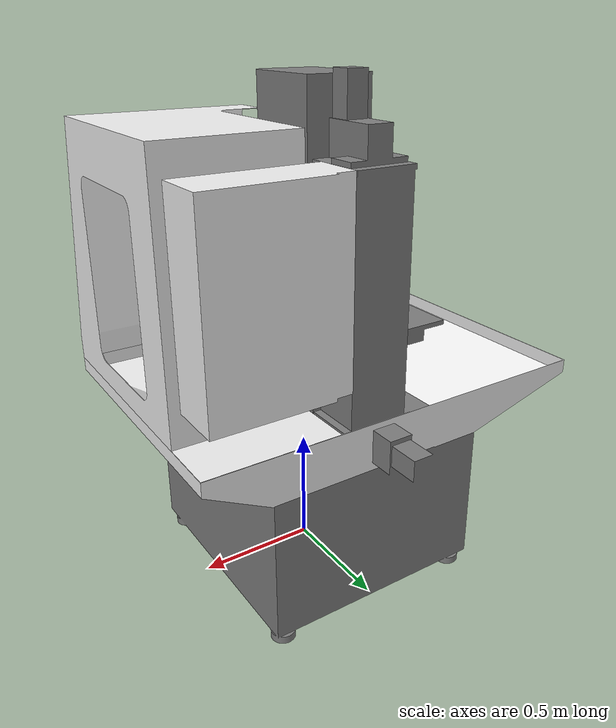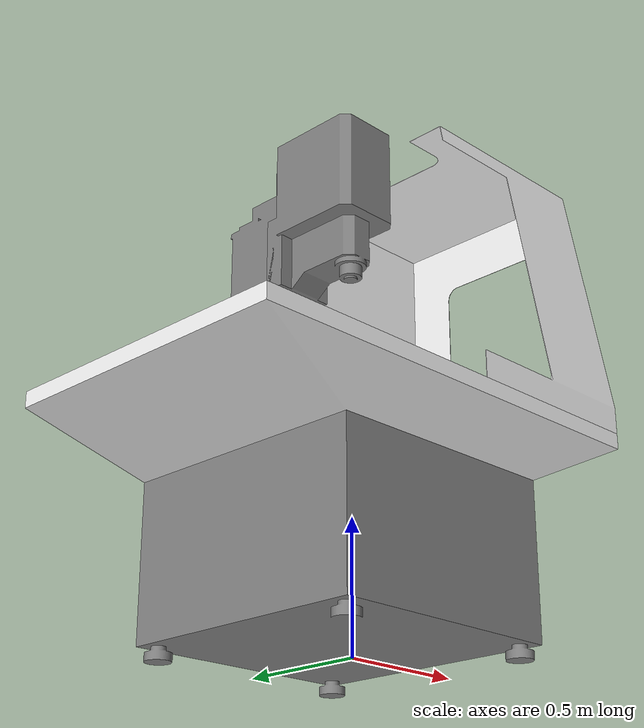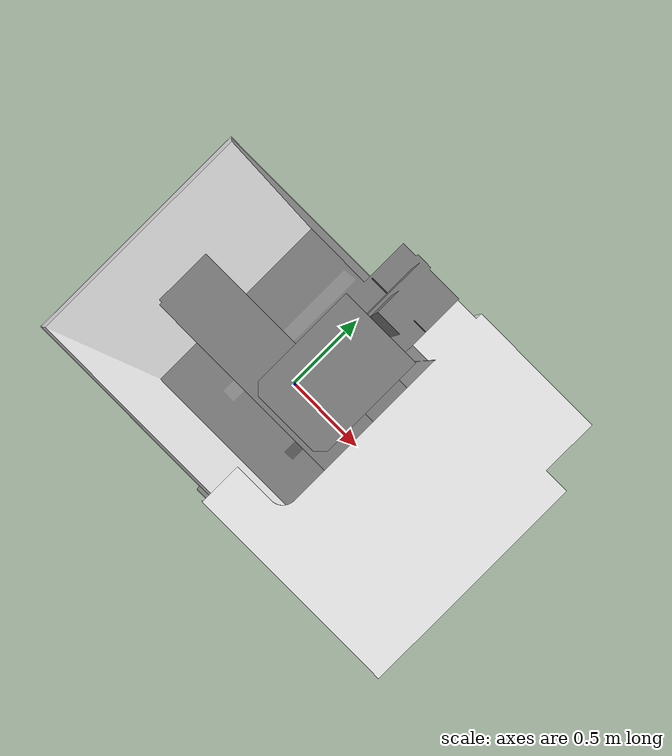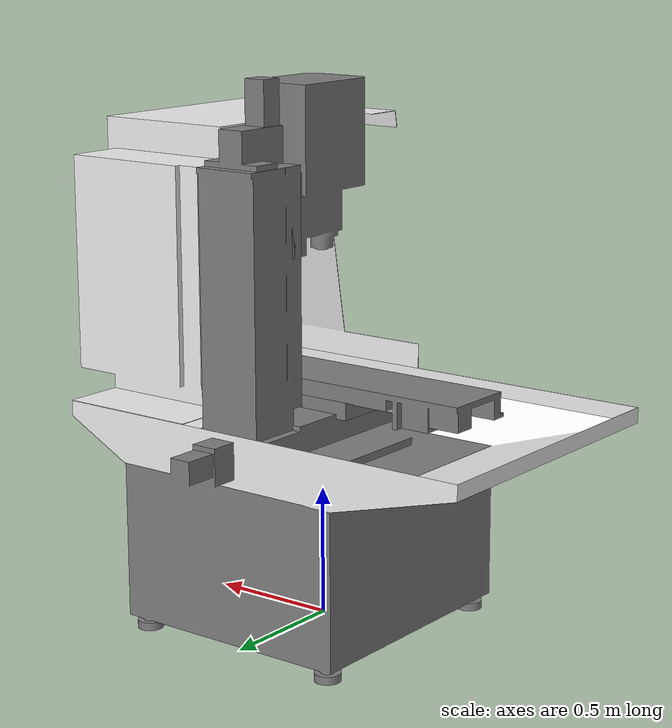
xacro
<?xml version="1.0" ?>
<robot name="tormach_pcnc_1100" xmlns:xacro="http://www.ros.org/wiki/xacro">
  <xacro:arg name="prefix" default=""/>
  <xacro:include filename="$(find tormach_pcnc_1100_support)/urdf/tormach_pcnc_1100_macro.xacro"/>
  <xacro:include filename="$(find tormach_pcnc_1100_support)/urdf/tormach_pcnc_1100_additionals.xacro"/>
  <xacro:tormach_pcnc_1100_macro prefix="$(arg prefix)"/>
  <xacro:tormach_pcnc_1100_sump prefix="$(arg prefix)"/>
  <xacro:tormach_pcnc_1100_cover_right prefix="$(arg prefix)"/>

  <!-- 'world' frame: default pose reference frame -->
  <link name="world" />
  <joint name="world-$(arg prefix)frame" type="fixed">
    <origin xyz="0 0 0" rpy="0 0 0"/>
    <axis xyz="0 0 1"/>
    <parent link="world"/>
    <child link="$(arg prefix)frame"/>
  </joint>
</robot>

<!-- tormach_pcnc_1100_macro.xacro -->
<robot xmlns:xacro="http://www.ros.org/wiki/xacro">
  <xacro:macro name="tormach_pcnc_1100_macro" params="prefix">
    <material name="${prefix}DarkGray">
      <color rgba="0.5 0.5 0.5 1.0"/>
    </material>

    <!-- link list -->
    <link name="${prefix}frame">
      <visual>
        <geometry>
          <mesh filename="package://tormach_pcnc_1100_support/meshes/frame.stl"/>
        </geometry>
        <origin rpy="0.0 0 0.0" xyz="0 0 0"/>
        <material name="${prefix}DarkGray"/>
      </visual>
    </link>
    <link name="${prefix}y_axis">
      <visual>
        <geometry>
          <mesh filename="package://tormach_pcnc_1100_support/meshes/y_slide.stl"/>
        </geometry>
        <origin rpy="0.0 0 0.0" xyz="0 0 0"/>
        <material name="${prefix}DarkGray"/>
      </visual>
      <collision>
        <geometry>
          <mesh filename="package://tormach_pcnc_1100_support/meshes/y_slide.stl"/>
        </geometry>
        <origin rpy="0.0 0 0.0" xyz="0 0 0"/>
      </collision>
      <inertial>
        <mass value="100"/>
        <inertia ixx="1.0" ixy="0.0" ixz="0.0" iyy="1.0" iyz="0.0" izz="1.0"/>
      </inertial>
    </link>

    <link name="${prefix}x_axis">
      <visual>
        <geometry>
          <mesh filename="package://tormach_pcnc_1100_support/meshes/x_slide.stl"/>
        </geometry>
        <origin rpy="0.0 0 0.0" xyz="0 0 0"/>
        <material name="${prefix}DarkGray"/>
      </visual>
      <collision>
        <geometry>
          <mesh filename="package://tormach_pcnc_1100_support/meshes/x_slide.stl"/>
        </geometry>
        <origin rpy="0.0 0 0.0" xyz="0 0 0"/>
      </collision>
      <inertial>
        <mass value="100"/>
        <inertia ixx="1.0" ixy="0.0" ixz="0.0" iyy="1.0" iyz="0.0" izz="1.0"/>
      </inertial>
    </link>

    <link name="${prefix}z_axis">
      <visual>
        <geometry>
          <mesh filename="package://tormach_pcnc_1100_support/meshes/z_slide.stl"/>
        </geometry>
        <origin rpy="0.0 0 0.0" xyz="0 0 0"/>
        <material name="${prefix}DarkGray"/>
      </visual>
      <collision>
        <geometry>
          <mesh filename="package://tormach_pcnc_1100_support/meshes/z_slide.stl"/>
        </geometry>
        <origin rpy="0.0 0 0.0" xyz="-0 0 0"/>
      </collision>
      <inertial>
        <mass value="100"/>
        <inertia ixx="1.0" ixy="0.0" ixz="0.0" iyy="1.0" iyz="0.0" izz="1.0"/>
      </inertial>
    </link>

    <!-- joint list -->
    <joint name="${prefix}y_joint" type="prismatic">
      <limit effort="1000.0" lower="-0.12065" upper="0.12065" velocity="0.5"/>
      <parent link="${prefix}frame"/>
      <child link="${prefix}y_axis"/>
      <axis xyz="0 1 0"/>
      <origin rpy="0.0 0.0 0.0" xyz="0 0 0.820"/>
    </joint>

    <joint name="${prefix}x_joint" type="prismatic">
      <limit effort="1000.0" lower="-0.2286" upper="0.2286" velocity="0.5"/>
      <parent link="${prefix}y_axis"/>
      <child link="${prefix}x_axis"/>
      <axis xyz="1 0 0"/>
      <origin xyz="0 0 0.075"/>
    </joint>

    <joint name="${prefix}z_joint" type="prismatic">
      <limit effort="1000.0" lower="-0.41275" upper="0" velocity="0.5"/>
      <parent link="${prefix}frame"/>
      <child link="${prefix}z_axis"/>
      <axis xyz="0 0 1"/>
      <origin xyz="0.0 0.304 1.783"/>
    </joint>

  </xacro:macro>
</robot>

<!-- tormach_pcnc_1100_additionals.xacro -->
<robot xmlns:xacro="http://www.ros.org/wiki/xacro">
  <xacro:macro name="tormach_pcnc_1100_sump" params="prefix">
    <material name="${prefix}TormachWhite">
      <color rgba="0.95 0.95 0.95 1.0"/>
    </material>

    <!-- link list -->
    <link name="${prefix}sump">
      <visual>
        <geometry>
          <mesh filename="package://tormach_pcnc_1100_support/meshes/sump.stl"/>
        </geometry>
        <material name="${prefix}TormachWhite"/>
        <origin rpy="0.0 0 0.0" xyz="0 0 0"/>
      </visual>
      <collision>
        <geometry>
          <mesh filename="package://tormach_pcnc_1100_support/meshes/sump.stl"/>
        </geometry>
        <origin rpy="0.0 0 0.0" xyz="0 0 0"/>
      </collision>
    </link>
    <!-- joint list -->
    <joint name="${prefix}sump_joint" type="fixed">
      <limit effort="0" lower="0" upper="0" velocity="0.5"/>
      <parent link="${prefix}frame"/>
      <child link="${prefix}sump"/>
      <axis xyz="0 1 0"/>
      <origin rpy="0.0 0.0 0.0" xyz="0 0 0"/>
    </joint>
  </xacro:macro>

  <xacro:macro name="tormach_pcnc_1100_cover_right" params="prefix">
    <!-- link list -->
    <link name="${prefix}cover_right">
      <visual>
        <geometry>
          <mesh filename="package://tormach_pcnc_1100_support/meshes/cover-right.stl"/>
        </geometry>
        <material name="${prefix}TormachWhite"/>
        <origin rpy="0.0 0 0.0" xyz="0 0 0"/>
      </visual>
      <collision>
        <geometry>
          <mesh filename="package://tormach_pcnc_1100_support/meshes/cover-right.stl"/>
        </geometry>
        <origin rpy="0.0 0 0.0" xyz="0 0 0"/>
      </collision>
    </link>
    <!-- joint list -->
    <joint name="${prefix}_cover_right_joint" type="fixed">
      <limit effort="0" lower="0" upper="0" velocity="0"/>
      <parent link="${prefix}frame"/>
      <child link="${prefix}cover_right"/>
      <axis xyz="0 1 0"/>
      <origin rpy="0.0 0.0 0.0" xyz="0 0 0"/>
    </joint>
  </xacro:macro>

</robot>
